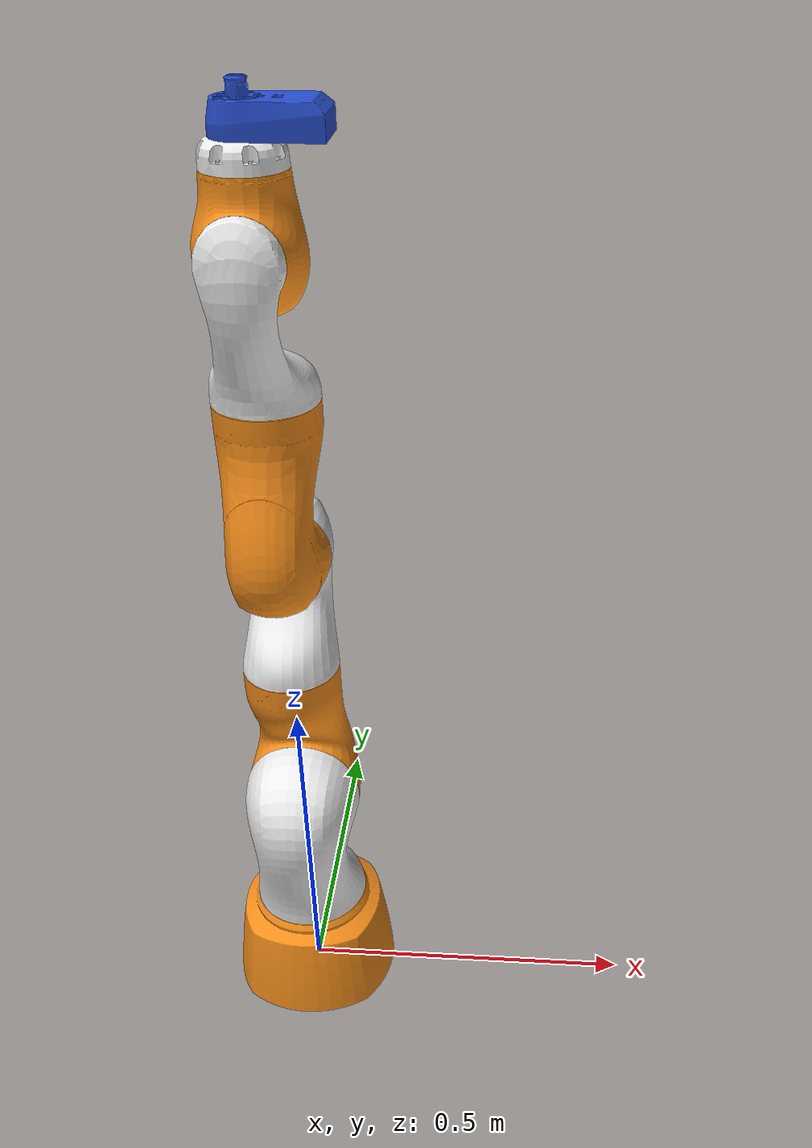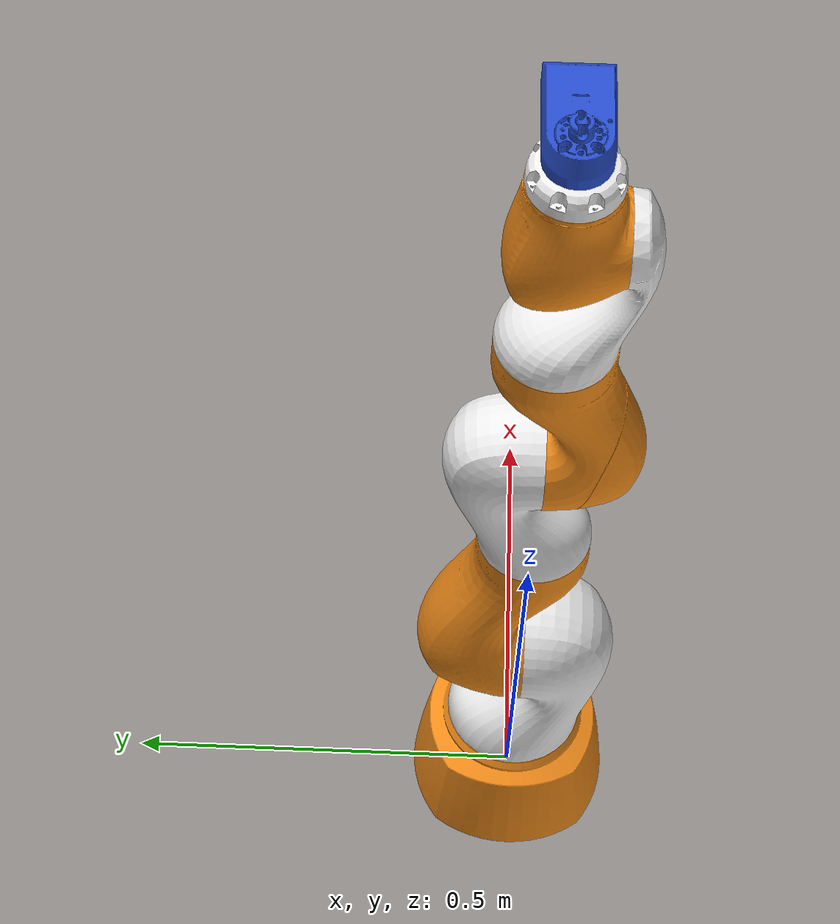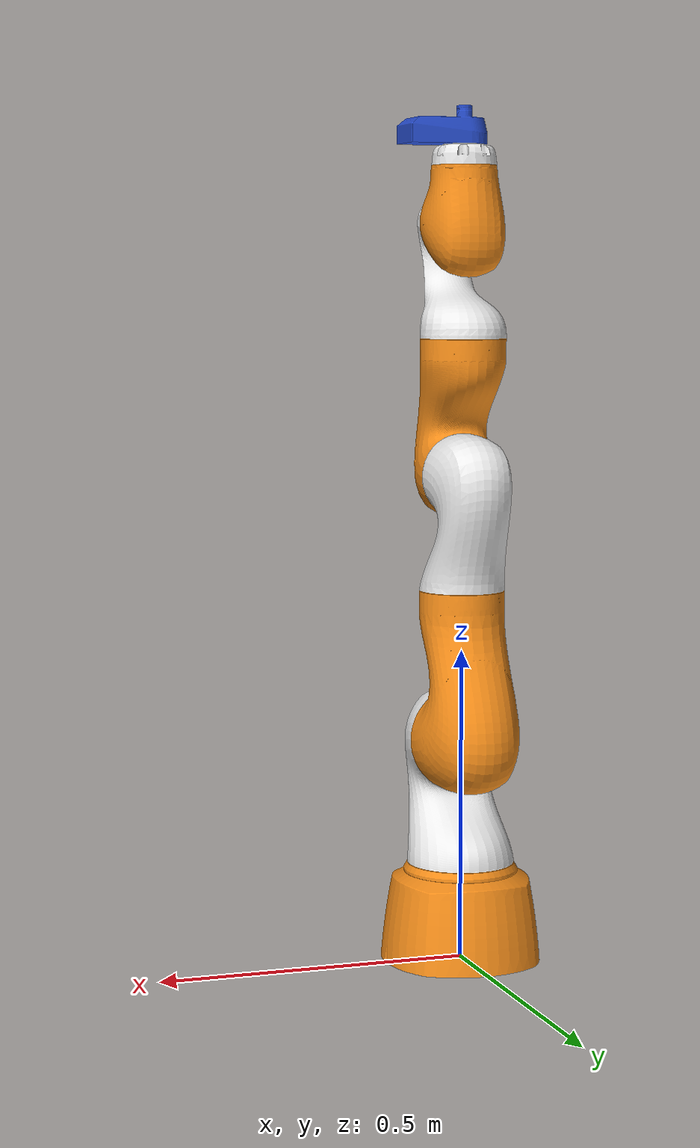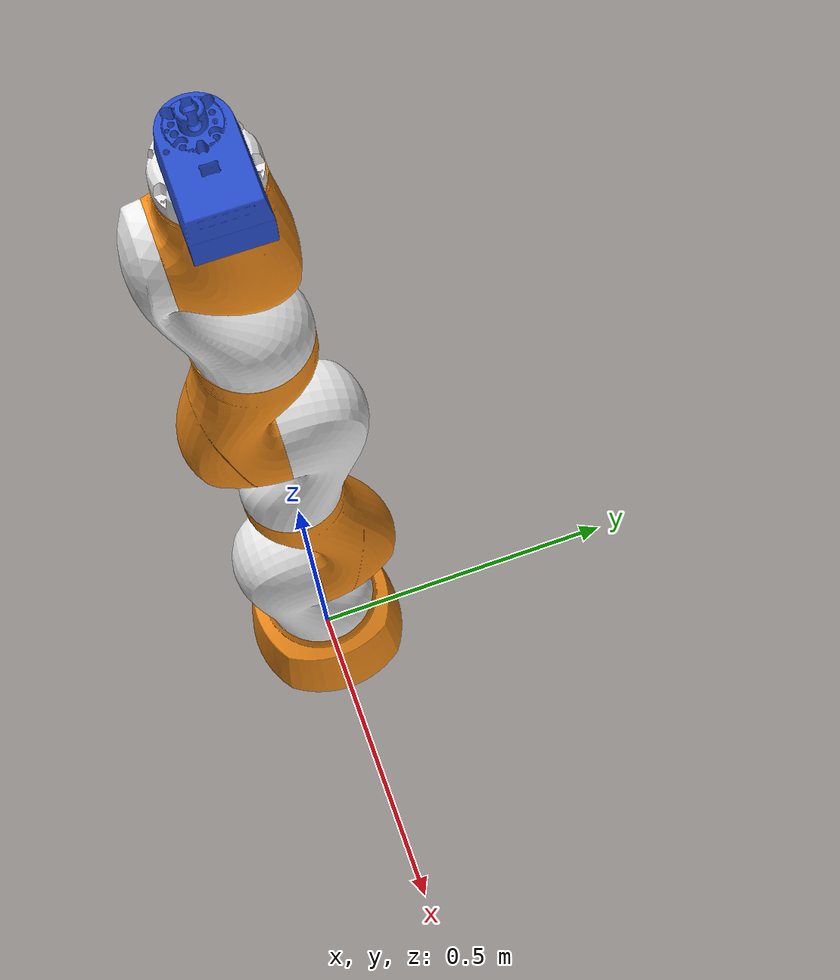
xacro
<?xml version="1.0"?>
<robot  xmlns:xacro="http://www.ros.org/wiki/xacro">

<!-- LINKOVI -->

    <link name="robot_base_link">
        <visual>
            <origin xyz="0 0 0" rpy="0 0 0"/>  <!-- tu su definirani pomaci tijela u odnosu na postojeći koord tijela-->
            <geometry>
                <mesh filename="file://$(find my_robot_description)/meshes/robot_base.stl" scale="0.001 0.001 0.001"/>
            </geometry>
            <material name="orange"/>
        </visual>

        <inertial>
            <origin xyz="0 0 0" rpy="0 0 0"/>
            <mass value="5.85"/>
            <inertia ixx="100"  ixy="0"  ixz="0" iyy="100" iyz="0" izz="100" />
        </inertial>

        <collision>
            <origin xyz="0 0 0" rpy="0 0 0"/>
            <geometry>
                <mesh filename="file://$(find my_robot_description)/meshes/robot_base.stl" scale="0.001 0.001 0.001"/>
            </geometry>
        </collision>

    </link>

    <!-- JOINT KONFIGURACIJA -->

    <joint name="base_link_1_joint" type="revolute">
        <axis xyz="0 0 1"/>
        <limit effort="0" lower="-2.967059" upper="2.967059" velocity="1.71042"/>
        <origin xyz="0 0 0.36" rpy="0 0 0 "/>
        <parent link="robot_base_link"/>
        <child link="robot_1_link"/>
        <dynamics damping="0.05" friction="0.1"/>

    </joint>

    <link name="robot_1_link">
        <visual>
            <origin xyz="0 0 0" rpy="0 0 0"/>
            <geometry>
                <mesh filename="file://$(find my_robot_description)/meshes/robot_link_1.stl" scale="0.001 0.001 0.001"/>
            </geometry>
            <material name="white"/>
        </visual>

        <inertial>
            <origin xyz="0 0 0" rpy="0 0 0"/>
            <mass value="5.85"/>
            <inertia ixx="100"  ixy="0"  ixz="0" iyy="100" iyz="0" izz="100" />
        </inertial>

        <collision>
            <origin xyz="0 0 0" rpy="0 0 0"/>
            <geometry>
                <mesh filename="file://$(find my_robot_description)/meshes/robot_link_1.stl" scale="0.001 0.001 0.001"/>
            </geometry>
        </collision>

    </link>

    <joint name="link_1-2_joint" type="revolute">
        <axis xyz="0 0 1"/>
        <limit effort="0" lower="-2.09439" upper="2.09439" velocity="1.71042"/>
        <origin xyz="0 0 0" rpy="-1.57 0 0 "/>
        <parent link="robot_1_link"/>
        <child link="robot_2_link"/>
        <dynamics damping="0.05" friction="0.1"/>
    </joint>

    <link name="robot_2_link">
        <visual>
            <origin xyz="0 0 0" rpy="0 0 0"/>
            <geometry>
                <mesh filename="file://$(find my_robot_description)/meshes/robot_link_2.stl" scale="0.001 0.001 0.001"/>
            </geometry>

            <material name="orange"/>
        </visual>

        <inertial>
            <origin xyz="0 0 0" rpy="0 0 0"/>
            <mass value="4.9289"/>
            <inertia ixx="100"  ixy="0"  ixz="0" iyy="100" iyz="0" izz="100" />
        </inertial>

        <collision>
            <origin xyz="0 0 0" rpy="0 0 0"/>
            <geometry>
                <mesh filename="file://$(find my_robot_description)/meshes/robot_link_2.stl" scale="0.001 0.001 0.001"/>
            </geometry>
        </collision>
    </link>

    <joint name="link_2-3_joint" type="revolute">
        <axis xyz="0 0 1"/>
        <limit effort="0" lower="-2.967059" upper="2.967059" velocity="1.7452"/>
        <origin xyz="0 -0.420 0" rpy="1.57070 0 0"/>
        <parent link="robot_2_link"/>
        <child link="robot_3_link"/>
        <dynamics damping="0.05" friction="0.1"/>
    </joint>

    <link name="robot_3_link">
        <visual>
            <origin xyz="0 0 0" rpy="0 0 0"/>
            <geometry>
                <mesh filename="file://$(find my_robot_description)/meshes/robot_link_3.stl" scale="0.001 0.001 0.001"/>
            </geometry>
            <material name="white"/>
        </visual>

        <inertial>
            <origin xyz="0 0 0" rpy="0 0 0"/>
            <mass value="3.3683"/>
            <inertia ixx="100"  ixy="0"  ixz="0" iyy="100" iyz="0" izz="100" />
        </inertial>

        <collision>
            <origin xyz="0 0 0" rpy="0 0 0"/>
            <geometry>
                <mesh filename="file://$(find my_robot_description)/meshes/robot_link_3.stl" scale="0.001 0.001 0.001"/>
            </geometry>
        </collision>
    </link>

    <joint name="link_3-4_joint" type="revolute">
        <axis xyz="0 0 1"/>
        <limit effort="0" lower="-2.09439" upper="2.09439" velocity="2.26893"/>
        <origin xyz="0 0 0" rpy="1.57070 0 0 "/>
        <parent link="robot_3_link"/>
        <child link="robot_4_link"/>
        <dynamics damping="0.05" friction="0.1"/>
    </joint>

    <link name="robot_4_link">
        <visual>
            <origin xyz="0 0 0" rpy="0 0 0"/>
            <geometry>
                <mesh filename="file://$(find my_robot_description)/meshes/robot_link_4.stl" scale="0.001 0.001 0.001"/>
            </geometry>
            <material name="orange"/>
        </visual>

        <inertial>
            <origin xyz="0 0 0" rpy="0 0 0"/>
            <mass value="4.3087"/>
            <inertia ixx="100"  ixy="0"  ixz="0" iyy="100" iyz="0" izz="100" />
        </inertial>

        <collision>
            <origin xyz="0 0 0" rpy="0 0 0"/>
            <geometry>
                <mesh filename="file://$(find my_robot_description)/meshes/robot_link_4.stl" scale="0.001 0.001 0.001"/>
            </geometry>
        </collision>
    </link>

    <joint name="link_4-5_joint" type="revolute">
        <axis xyz="0 0 1"/>
        <limit effort="0" lower="-2.967059" upper="2.967059" velocity="2.44346"/>
        <origin xyz="0 0.4 0" rpy="-1.57070 0 0 "/>
        <parent link="robot_4_link"/>
        <child link="robot_5_link"/>
        <dynamics damping="0.05" friction="0.1"/>
    </joint>

    <link name="robot_5_link">
        <visual>
            <origin xyz="0 0 0" rpy="0 0 0"/>
            <geometry>
                <mesh filename="file://$(find my_robot_description)/meshes/robot_link_5.stl" scale="0.001 0.001 0.001"/>
            </geometry>
            <material name="white"/>
        </visual>

        <inertial>
            <origin xyz="0 0 0" rpy="0 0 0"/>
            <mass value="3.5167"/>
            <inertia ixx="100"  ixy="0"  ixz="0" iyy="100" iyz="0" izz="100" />
        </inertial>

        <collision>
            <origin xyz="0 0 0" rpy="0 0 0"/>
            <geometry>
                <mesh filename="file://$(find my_robot_description)/meshes/robot_link_5.stl" scale="0.001 0.001 0.001"/>
            </geometry>
        </collision>
    </link>

    <joint name="link_5-6_joint" type="revolute">
        <axis xyz="0 0 1"/>
        <limit effort="0" lower="-2.09439" upper="2.09439" velocity="3.14159"/>
        <origin xyz="0 0 0" rpy="-1.57070 0 0 "/>
        <parent link="robot_5_link"/>
        <child link="robot_6_link"/>
        <dynamics damping="0.05" friction="0.1"/>
    </joint>

    <link name="robot_6_link">
        <visual>
            <origin xyz="0 0 0" rpy="0 0 0"/>
            <geometry>
                <mesh filename="file://$(find my_robot_description)/meshes/robot_link_6.stl" scale="0.001 0.001 0.001"/>
            </geometry>
            <material name="orange"/>
        </visual>

        <inertial>
            <origin xyz="0 0 0" rpy="0 0 0"/>
            <mass value="1.5101"/>
            <inertia ixx="100"  ixy="0"  ixz="0" iyy="100" iyz="0" izz="100" />
        </inertial>

        <collision>
            <origin xyz="0 0 0" rpy="0 0 0"/>
            <geometry>
                <mesh filename="file://$(find my_robot_description)/meshes/robot_link_6.stl" scale="0.001 0.001 0.001"/>
            </geometry>
        </collision>
    </link>

    <joint name="link_6-7_joint" type="revolute">
        <axis xyz="0 0 1"/>
        <limit effort="0" lower="-3.05433" upper="3.05433" velocity="3.14159"/>
        <origin xyz="0 -0.126 0" rpy="1.5707 0 0 "/>
        <parent link="robot_6_link"/>
        <child link="robot_7_link"/>
        <dynamics damping="0.05" friction="0.1"/>
    </joint>

    <link name="robot_7_link">
        <visual>
            <origin xyz="0 0 0" rpy="0 0 0"/>
            <geometry>
                <mesh filename="file://$(find my_robot_description)/meshes/robot_link_7.stl" scale="0.001 0.001 0.001"/>
            </geometry>
            <material name="white"/>
        </visual>

        <inertial>
            <origin xyz="0 0 0" rpy="0 0 0"/>
            <mass value="1.0042"/>
            <inertia ixx="100"  ixy="0"  ixz="0" iyy="100" iyz="0" izz="100" />
        </inertial>

        <collision>
            <origin xyz="0 0 0" rpy="0 0 0"/>
            <geometry>
                <mesh filename="file://$(find my_robot_description)/meshes/robot_link_7.stl" scale="0.001 0.001 0.001"/>
            </geometry>
        </collision>
    </link>

<!-- Depending on the need, one of the tools is activated-->

    <link name="adapter_link">
        <visual>
            <origin xyz="0 0 0" rpy="0 0 0"/>
            <geometry>
                <mesh filename="file://$(find my_robot_description)/meshes/adapter.stl" scale="0.001 0.001 0.001"/>
            </geometry>
            <material name="blue"/>
        </visual>
    </link>

    <joint name="link_7_adapter_joint" type="fixed">
            <parent link="robot_7_link"/>
            <child link="adapter_link"/>
            <origin xyz="0 0 0" rpy="0 0 0"/>
    </joint>

</robot>
